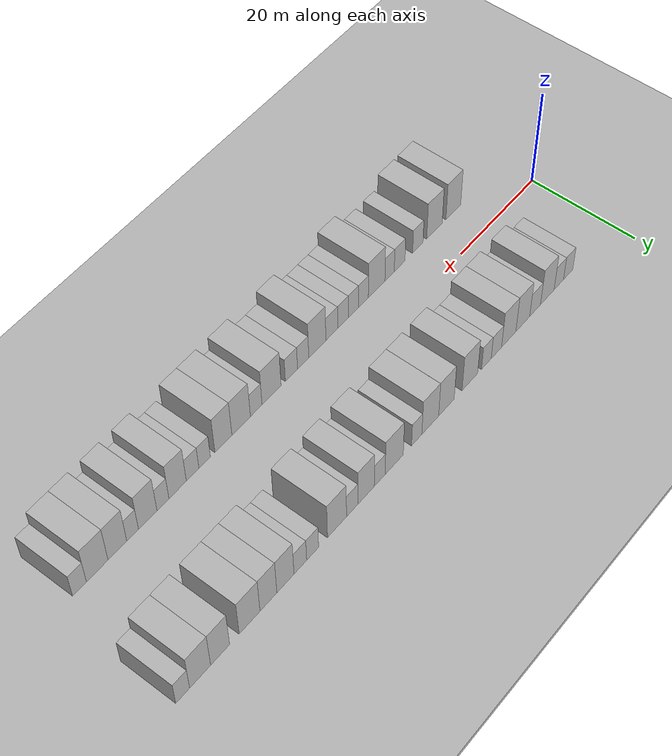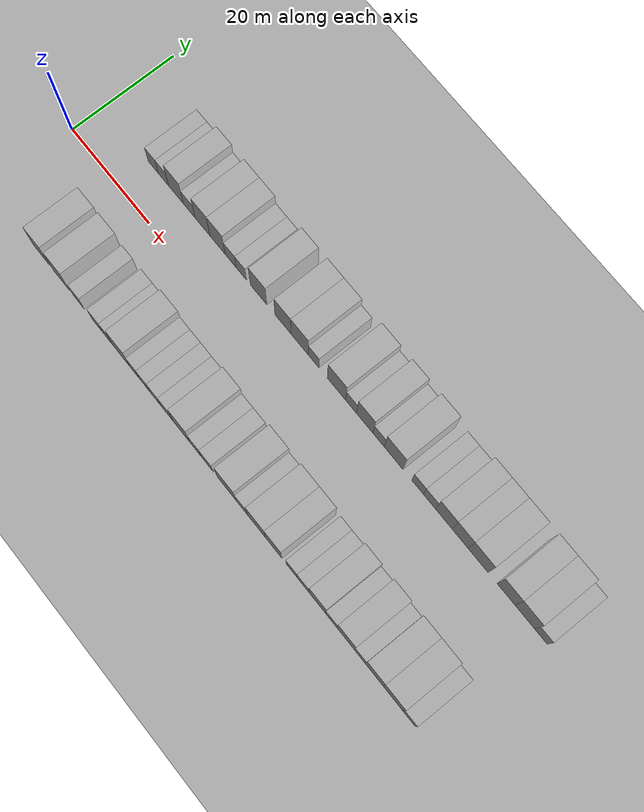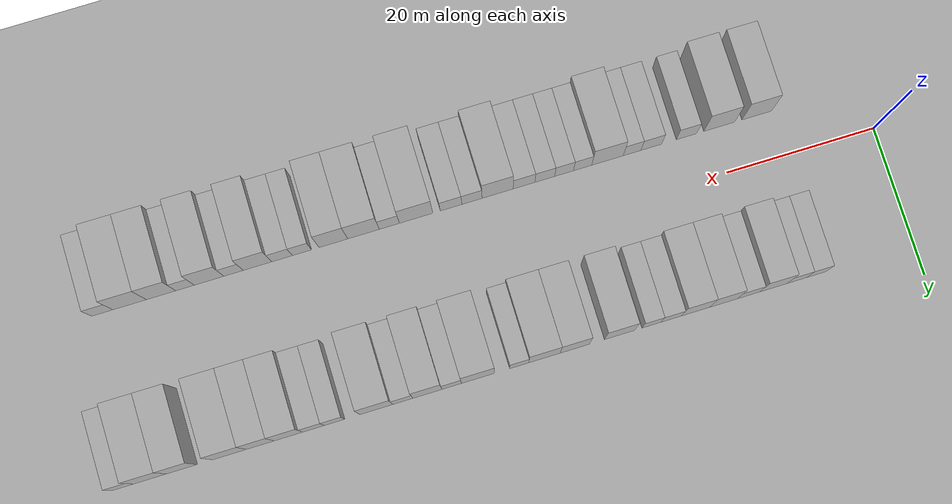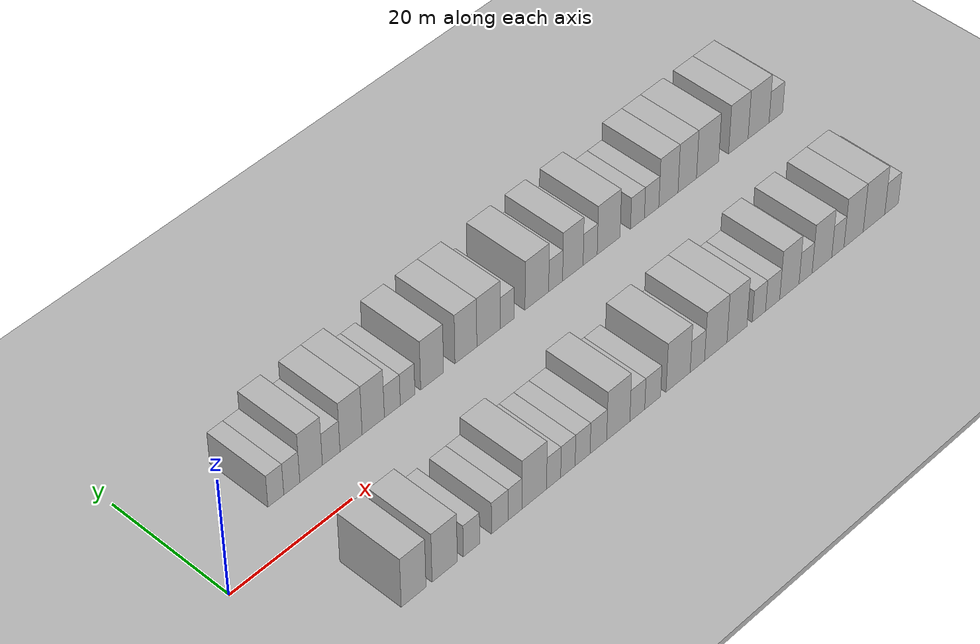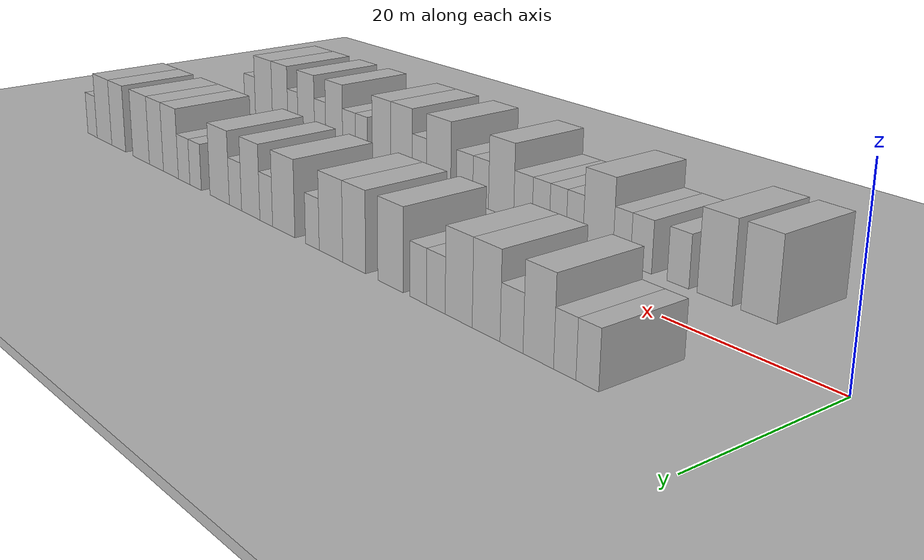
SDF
<sdf version="1.6">
 <world name="default">
  <include><name>ground_plane_1</name><uri>model://HANNAS_ground_plane</uri></include>
  <include>
   <name>ground_plane_2</name>
   <uri>model://HANNAS_ground_plane</uri>
   <pose>100 0 0  0 0 0</pose>
  </include>
  <model name="building_1">
   <static>1</static>
   <pose>13.2982 11.0000 0 0.000000 0.000000 1.570796</pose>
   <link name="link">
    <pose>0 0 3.00 0 0 0</pose>
    <collision name="collision"><geometry><box><size>10.0000 2.5964 6.0000</size></box></geometry></collision>
    <visual name="visual">
     <cast_shadows>0</cast_shadows>
     <geometry><box><size>10.0000 2.5964 6.0000</size></box></geometry>
     <material>
      <script>
       <uri>model://HANNAS_wall/materials/scripts</uri>
       <uri>model://HANNAS_wall/materials/textures</uri>
       <name>vrc/HANNAS_wall</name>
      </script>
     </material>
    </visual>
   </link>
  </model>
  <model name="building_2">
   <static>1</static>
   <pose>15.9129 11.0000 0 0.000000 0.000000 1.570796</pose>
   <link name="link">
    <pose>0 0 3.00 0 0 0</pose>
    <collision name="collision"><geometry><box><size>10.0000 2.6331 6.0000</size></box></geometry></collision>
    <visual name="visual">
     <cast_shadows>0</cast_shadows>
     <geometry><box><size>10.0000 2.6331 6.0000</size></box></geometry>
     <material>
      <script>
       <uri>model://HANNAS_wall/materials/scripts</uri>
       <uri>model://HANNAS_wall/materials/textures</uri>
       <name>vrc/HANNAS_wall</name>
      </script>
     </material>
    </visual>
   </link>
  </model>
  <model name="building_3">
   <static>1</static>
   <pose>19.1036 11.0000 0 0.000000 0.000000 1.570796</pose>
   <link name="link">
    <pose>0 0 4.50 0 0 0</pose>
    <collision name="collision"><geometry><box><size>10.0000 3.7482 9.0000</size></box></geometry></collision>
    <visual name="visual">
     <cast_shadows>0</cast_shadows>
     <geometry><box><size>10.0000 3.7482 9.0000</size></box></geometry>
     <material>
      <script>
       <uri>model://HANNAS_wall/materials/scripts</uri>
       <uri>model://HANNAS_wall/materials/textures</uri>
       <name>vrc/HANNAS_wall</name>
      </script>
     </material>
    </visual>
   </link>
  </model>
  <model name="building_4">
   <static>1</static>
   <pose>22.4496 11.0000 0 0.000000 0.000000 1.570796</pose>
   <link name="link">
    <pose>0 0 3.00 0 0 0</pose>
    <collision name="collision"><geometry><box><size>10.0000 2.9438 6.0000</size></box></geometry></collision>
    <visual name="visual">
     <cast_shadows>0</cast_shadows>
     <geometry><box><size>10.0000 2.9438 6.0000</size></box></geometry>
     <material>
      <script>
       <uri>model://HANNAS_wall/materials/scripts</uri>
       <uri>model://HANNAS_wall/materials/textures</uri>
       <name>vrc/HANNAS_wall</name>
      </script>
     </material>
    </visual>
   </link>
  </model>
  <model name="building_5">
   <static>1</static>
   <pose>25.7871 11.0000 0 0.000000 0.000000 1.570796</pose>
   <link name="link">
    <pose>0 0 4.50 0 0 0</pose>
    <collision name="collision"><geometry><box><size>10.0000 3.7313 9.0000</size></box></geometry></collision>
    <visual name="visual">
     <cast_shadows>0</cast_shadows>
     <geometry><box><size>10.0000 3.7313 9.0000</size></box></geometry>
     <material>
      <script>
       <uri>model://HANNAS_wall/materials/scripts</uri>
       <uri>model://HANNAS_wall/materials/textures</uri>
       <name>vrc/HANNAS_wall</name>
      </script>
     </material>
    </visual>
   </link>
  </model>
  <model name="building_6">
   <static>1</static>
   <pose>29.5493 11.0000 0 0.000000 0.000000 1.570796</pose>
   <link name="link">
    <pose>0 0 4.50 0 0 0</pose>
    <collision name="collision"><geometry><box><size>10.0000 3.7931 9.0000</size></box></geometry></collision>
    <visual name="visual">
     <cast_shadows>0</cast_shadows>
     <geometry><box><size>10.0000 3.7931 9.0000</size></box></geometry>
     <material>
      <script>
       <uri>model://HANNAS_wall/materials/scripts</uri>
       <uri>model://HANNAS_wall/materials/textures</uri>
       <name>vrc/HANNAS_wall</name>
      </script>
     </material>
    </visual>
   </link>
  </model>
  <model name="building_7">
   <static>1</static>
   <pose>32.8133 11.0000 0 0.000000 0.000000 1.570796</pose>
   <link name="link">
    <pose>0 0 3.00 0 0 0</pose>
    <collision name="collision"><geometry><box><size>10.0000 2.7348 6.0000</size></box></geometry></collision>
    <visual name="visual">
     <cast_shadows>0</cast_shadows>
     <geometry><box><size>10.0000 2.7348 6.0000</size></box></geometry>
     <material>
      <script>
       <uri>model://HANNAS_wall/materials/scripts</uri>
       <uri>model://HANNAS_wall/materials/textures</uri>
       <name>vrc/HANNAS_wall</name>
      </script>
     </material>
    </visual>
   </link>
  </model>
  <model name="building_8">
   <static>1</static>
   <pose>35.4457 11.0000 0 0.000000 0.000000 1.570796</pose>
   <link name="link">
    <pose>0 0 3.00 0 0 0</pose>
    <collision name="collision"><geometry><box><size>10.0000 2.5301 6.0000</size></box></geometry></collision>
    <visual name="visual">
     <cast_shadows>0</cast_shadows>
     <geometry><box><size>10.0000 2.5301 6.0000</size></box></geometry>
     <material>
      <script>
       <uri>model://HANNAS_wall/materials/scripts</uri>
       <uri>model://HANNAS_wall/materials/textures</uri>
       <name>vrc/HANNAS_wall</name>
      </script>
     </material>
    </visual>
   </link>
  </model>
  <model name="building_9">
   <static>1</static>
   <pose>39.7168 11.0000 0 0.000000 0.000000 1.570796</pose>
   <link name="link">
    <pose>0 0 4.50 0 0 0</pose>
    <collision name="collision"><geometry><box><size>10.0000 4.0119 9.0000</size></box></geometry></collision>
    <visual name="visual">
     <cast_shadows>0</cast_shadows>
     <geometry><box><size>10.0000 4.0119 9.0000</size></box></geometry>
     <material>
      <script>
       <uri>model://HANNAS_wall/materials/scripts</uri>
       <uri>model://HANNAS_wall/materials/textures</uri>
       <name>vrc/HANNAS_wall</name>
      </script>
     </material>
    </visual>
   </link>
  </model>
  <model name="building_10">
   <static>1</static>
   <pose>45.6708 11.0000 0 0.000000 0.000000 1.570796</pose>
   <link name="link">
    <pose>0 0 4.50 0 0 0</pose>
    <collision name="collision"><geometry><box><size>10.0000 3.8962 9.0000</size></box></geometry></collision>
    <visual name="visual">
     <cast_shadows>0</cast_shadows>
     <geometry><box><size>10.0000 3.8962 9.0000</size></box></geometry>
     <material>
      <script>
       <uri>model://HANNAS_wall/materials/scripts</uri>
       <uri>model://HANNAS_wall/materials/textures</uri>
       <name>vrc/HANNAS_wall</name>
      </script>
     </material>
    </visual>
   </link>
  </model>
  <model name="building_11">
   <static>1</static>
   <pose>49.7050 11.0000 0 0.000000 0.000000 1.570796</pose>
   <link name="link">
    <pose>0 0 4.50 0 0 0</pose>
    <collision name="collision"><geometry><box><size>10.0000 4.1721 9.0000</size></box></geometry></collision>
    <visual name="visual">
     <cast_shadows>0</cast_shadows>
     <geometry><box><size>10.0000 4.1721 9.0000</size></box></geometry>
     <material>
      <script>
       <uri>model://HANNAS_wall/materials/scripts</uri>
       <uri>model://HANNAS_wall/materials/textures</uri>
       <name>vrc/HANNAS_wall</name>
      </script>
     </material>
    </visual>
   </link>
  </model>
  <model name="building_12">
   <static>1</static>
   <pose>53.0540 11.0000 0 0.000000 0.000000 1.570796</pose>
   <link name="link">
    <pose>0 0 3.00 0 0 0</pose>
    <collision name="collision"><geometry><box><size>10.0000 2.5259 6.0000</size></box></geometry></collision>
    <visual name="visual">
     <cast_shadows>0</cast_shadows>
     <geometry><box><size>10.0000 2.5259 6.0000</size></box></geometry>
     <material>
      <script>
       <uri>model://HANNAS_wall/materials/scripts</uri>
       <uri>model://HANNAS_wall/materials/textures</uri>
       <name>vrc/HANNAS_wall</name>
      </script>
     </material>
    </visual>
   </link>
  </model>
  <model name="building_13">
   <static>1</static>
   <pose>58.4918 11.0000 0 0.000000 0.000000 1.570796</pose>
   <link name="link">
    <pose>0 0 4.50 0 0 0</pose>
    <collision name="collision"><geometry><box><size>10.0000 4.3497 9.0000</size></box></geometry></collision>
    <visual name="visual">
     <cast_shadows>0</cast_shadows>
     <geometry><box><size>10.0000 4.3497 9.0000</size></box></geometry>
     <material>
      <script>
       <uri>model://HANNAS_wall/materials/scripts</uri>
       <uri>model://HANNAS_wall/materials/textures</uri>
       <name>vrc/HANNAS_wall</name>
      </script>
     </material>
    </visual>
   </link>
  </model>
  <model name="building_14">
   <static>1</static>
   <pose>61.9541 11.0000 0 0.000000 0.000000 1.570796</pose>
   <link name="link">
    <pose>0 0 3.00 0 0 0</pose>
    <collision name="collision"><geometry><box><size>10.0000 2.5749 6.0000</size></box></geometry></collision>
    <visual name="visual">
     <cast_shadows>0</cast_shadows>
     <geometry><box><size>10.0000 2.5749 6.0000</size></box></geometry>
     <material>
      <script>
       <uri>model://HANNAS_wall/materials/scripts</uri>
       <uri>model://HANNAS_wall/materials/textures</uri>
       <name>vrc/HANNAS_wall</name>
      </script>
     </material>
    </visual>
   </link>
  </model>
  <model name="building_15">
   <static>1</static>
   <pose>65.1549 11.0000 0 0.000000 0.000000 1.570796</pose>
   <link name="link">
    <pose>0 0 4.50 0 0 0</pose>
    <collision name="collision"><geometry><box><size>10.0000 3.8267 9.0000</size></box></geometry></collision>
    <visual name="visual">
     <cast_shadows>0</cast_shadows>
     <geometry><box><size>10.0000 3.8267 9.0000</size></box></geometry>
     <material>
      <script>
       <uri>model://HANNAS_wall/materials/scripts</uri>
       <uri>model://HANNAS_wall/materials/textures</uri>
       <name>vrc/HANNAS_wall</name>
      </script>
     </material>
    </visual>
   </link>
  </model>
  <model name="building_16">
   <static>1</static>
   <pose>68.3939 11.0000 0 0.000000 0.000000 1.570796</pose>
   <link name="link">
    <pose>0 0 3.00 0 0 0</pose>
    <collision name="collision"><geometry><box><size>10.0000 2.6512 6.0000</size></box></geometry></collision>
    <visual name="visual">
     <cast_shadows>0</cast_shadows>
     <geometry><box><size>10.0000 2.6512 6.0000</size></box></geometry>
     <material>
      <script>
       <uri>model://HANNAS_wall/materials/scripts</uri>
       <uri>model://HANNAS_wall/materials/textures</uri>
       <name>vrc/HANNAS_wall</name>
      </script>
     </material>
    </visual>
   </link>
  </model>
  <model name="building_17">
   <static>1</static>
   <pose>71.8897 11.0000 0 0.000000 0.000000 1.570796</pose>
   <link name="link">
    <pose>0 0 4.50 0 0 0</pose>
    <collision name="collision"><geometry><box><size>10.0000 4.3404 9.0000</size></box></geometry></collision>
    <visual name="visual">
     <cast_shadows>0</cast_shadows>
     <geometry><box><size>10.0000 4.3404 9.0000</size></box></geometry>
     <material>
      <script>
       <uri>model://HANNAS_wall/materials/scripts</uri>
       <uri>model://HANNAS_wall/materials/textures</uri>
       <name>vrc/HANNAS_wall</name>
      </script>
     </material>
    </visual>
   </link>
  </model>
  <model name="building_18">
   <static>1</static>
   <pose>77.3994 11.0000 0 0.000000 0.000000 1.570796</pose>
   <link name="link">
    <pose>0 0 3.00 0 0 0</pose>
    <collision name="collision"><geometry><box><size>10.0000 2.6791 6.0000</size></box></geometry></collision>
    <visual name="visual">
     <cast_shadows>0</cast_shadows>
     <geometry><box><size>10.0000 2.6791 6.0000</size></box></geometry>
     <material>
      <script>
       <uri>model://HANNAS_wall/materials/scripts</uri>
       <uri>model://HANNAS_wall/materials/textures</uri>
       <name>vrc/HANNAS_wall</name>
      </script>
     </material>
    </visual>
   </link>
  </model>
  <model name="building_19">
   <static>1</static>
   <pose>80.1359 11.0000 0 0.000000 0.000000 1.570796</pose>
   <link name="link">
    <pose>0 0 3.00 0 0 0</pose>
    <collision name="collision"><geometry><box><size>10.0000 2.7939 6.0000</size></box></geometry></collision>
    <visual name="visual">
     <cast_shadows>0</cast_shadows>
     <geometry><box><size>10.0000 2.7939 6.0000</size></box></geometry>
     <material>
      <script>
       <uri>model://HANNAS_wall/materials/scripts</uri>
       <uri>model://HANNAS_wall/materials/textures</uri>
       <name>vrc/HANNAS_wall</name>
      </script>
     </material>
    </visual>
   </link>
  </model>
  <model name="building_20">
   <static>1</static>
   <pose>83.4077 11.0000 0 0.000000 0.000000 1.570796</pose>
   <link name="link">
    <pose>0 0 4.50 0 0 0</pose>
    <collision name="collision"><geometry><box><size>10.0000 3.7497 9.0000</size></box></geometry></collision>
    <visual name="visual">
     <cast_shadows>0</cast_shadows>
     <geometry><box><size>10.0000 3.7497 9.0000</size></box></geometry>
     <material>
      <script>
       <uri>model://HANNAS_wall/materials/scripts</uri>
       <uri>model://HANNAS_wall/materials/textures</uri>
       <name>vrc/HANNAS_wall</name>
      </script>
     </material>
    </visual>
   </link>
  </model>
  <model name="building_21">
   <static>1</static>
   <pose>87.1007 11.0000 0 0.000000 0.000000 1.570796</pose>
   <link name="link">
    <pose>0 0 4.50 0 0 0</pose>
    <collision name="collision"><geometry><box><size>10.0000 3.6362 9.0000</size></box></geometry></collision>
    <visual name="visual">
     <cast_shadows>0</cast_shadows>
     <geometry><box><size>10.0000 3.6362 9.0000</size></box></geometry>
     <material>
      <script>
       <uri>model://HANNAS_wall/materials/scripts</uri>
       <uri>model://HANNAS_wall/materials/textures</uri>
       <name>vrc/HANNAS_wall</name>
      </script>
     </material>
    </visual>
   </link>
  </model>
  <model name="building_22">
   <static>1</static>
   <pose>91.1329 11.0000 0 0.000000 0.000000 1.570796</pose>
   <link name="link">
    <pose>0 0 4.50 0 0 0</pose>
    <collision name="collision"><geometry><box><size>10.0000 4.4283 9.0000</size></box></geometry></collision>
    <visual name="visual">
     <cast_shadows>0</cast_shadows>
     <geometry><box><size>10.0000 4.4283 9.0000</size></box></geometry>
     <material>
      <script>
       <uri>model://HANNAS_wall/materials/scripts</uri>
       <uri>model://HANNAS_wall/materials/textures</uri>
       <name>vrc/HANNAS_wall</name>
      </script>
     </material>
    </visual>
   </link>
  </model>
  <model name="building_23">
   <static>1</static>
   <pose>97.3107 11.0000 0 0.000000 0.000000 1.570796</pose>
   <link name="link">
    <pose>0 0 4.50 0 0 0</pose>
    <collision name="collision"><geometry><box><size>10.0000 3.9274 9.0000</size></box></geometry></collision>
    <visual name="visual">
     <cast_shadows>0</cast_shadows>
     <geometry><box><size>10.0000 3.9274 9.0000</size></box></geometry>
     <material>
      <script>
       <uri>model://HANNAS_wall/materials/scripts</uri>
       <uri>model://HANNAS_wall/materials/textures</uri>
       <name>vrc/HANNAS_wall</name>
      </script>
     </material>
    </visual>
   </link>
  </model>
  <model name="building_24">
   <static>1</static>
   <pose>101.4170 11.0000 0 0.000000 0.000000 1.570796</pose>
   <link name="link">
    <pose>0 0 4.50 0 0 0</pose>
    <collision name="collision"><geometry><box><size>10.0000 4.2852 9.0000</size></box></geometry></collision>
    <visual name="visual">
     <cast_shadows>0</cast_shadows>
     <geometry><box><size>10.0000 4.2852 9.0000</size></box></geometry>
     <material>
      <script>
       <uri>model://HANNAS_wall/materials/scripts</uri>
       <uri>model://HANNAS_wall/materials/textures</uri>
       <name>vrc/HANNAS_wall</name>
      </script>
     </material>
    </visual>
   </link>
  </model>
  <model name="building_25">
   <static>1</static>
   <pose>104.9561 11.0000 0 0.000000 0.000000 1.570796</pose>
   <link name="link">
    <pose>0 0 3.00 0 0 0</pose>
    <collision name="collision"><geometry><box><size>10.0000 2.7929 6.0000</size></box></geometry></collision>
    <visual name="visual">
     <cast_shadows>0</cast_shadows>
     <geometry><box><size>10.0000 2.7929 6.0000</size></box></geometry>
     <material>
      <script>
       <uri>model://HANNAS_wall/materials/scripts</uri>
       <uri>model://HANNAS_wall/materials/textures</uri>
       <name>vrc/HANNAS_wall</name>
      </script>
     </material>
    </visual>
   </link>
  </model>
  <model name="building_50">
   <static>1</static>
   <pose>14.0295 -11.0000 0 0.000000 0.000000 1.570796</pose>
   <link name="link">
    <pose>0 0 4.50 0 0 0</pose>
    <collision name="collision"><geometry><box><size>10.0000 4.0590 9.0000</size></box></geometry></collision>
    <visual name="visual">
     <cast_shadows>0</cast_shadows>
     <geometry><box><size>10.0000 4.0590 9.0000</size></box></geometry>
     <material>
      <script>
       <uri>model://HANNAS_wall/materials/scripts</uri>
       <uri>model://HANNAS_wall/materials/textures</uri>
       <name>vrc/HANNAS_wall</name>
      </script>
     </material>
    </visual>
   </link>
  </model>
  <model name="building_51">
   <static>1</static>
   <pose>19.1534 -11.0000 0 0.000000 0.000000 1.570796</pose>
   <link name="link">
    <pose>0 0 4.50 0 0 0</pose>
    <collision name="collision"><geometry><box><size>10.0000 4.1889 9.0000</size></box></geometry></collision>
    <visual name="visual">
     <cast_shadows>0</cast_shadows>
     <geometry><box><size>10.0000 4.1889 9.0000</size></box></geometry>
     <material>
      <script>
       <uri>model://HANNAS_wall/materials/scripts</uri>
       <uri>model://HANNAS_wall/materials/textures</uri>
       <name>vrc/HANNAS_wall</name>
      </script>
     </material>
    </visual>
   </link>
  </model>
  <model name="building_52">
   <static>1</static>
   <pose>23.6245 -11.0000 0 0.000000 0.000000 1.570796</pose>
   <link name="link">
    <pose>0 0 3.00 0 0 0</pose>
    <collision name="collision"><geometry><box><size>10.0000 2.7533 6.0000</size></box></geometry></collision>
    <visual name="visual">
     <cast_shadows>0</cast_shadows>
     <geometry><box><size>10.0000 2.7533 6.0000</size></box></geometry>
     <material>
      <script>
       <uri>model://HANNAS_wall/materials/scripts</uri>
       <uri>model://HANNAS_wall/materials/textures</uri>
       <name>vrc/HANNAS_wall</name>
      </script>
     </material>
    </visual>
   </link>
  </model>
  <model name="building_53">
   <static>1</static>
   <pose>28.4085 -11.0000 0 0.000000 0.000000 1.570796</pose>
   <link name="link">
    <pose>0 0 3.00 0 0 0</pose>
    <collision name="collision"><geometry><box><size>10.0000 2.8147 6.0000</size></box></geometry></collision>
    <visual name="visual">
     <cast_shadows>0</cast_shadows>
     <geometry><box><size>10.0000 2.8147 6.0000</size></box></geometry>
     <material>
      <script>
       <uri>model://HANNAS_wall/materials/scripts</uri>
       <uri>model://HANNAS_wall/materials/textures</uri>
       <name>vrc/HANNAS_wall</name>
      </script>
     </material>
    </visual>
   </link>
  </model>
  <model name="building_54">
   <static>1</static>
   <pose>31.0183 -11.0000 0 0.000000 0.000000 1.570796</pose>
   <link name="link">
    <pose>0 0 3.00 0 0 0</pose>
    <collision name="collision"><geometry><box><size>10.0000 2.4049 6.0000</size></box></geometry></collision>
    <visual name="visual">
     <cast_shadows>0</cast_shadows>
     <geometry><box><size>10.0000 2.4049 6.0000</size></box></geometry>
     <material>
      <script>
       <uri>model://HANNAS_wall/materials/scripts</uri>
       <uri>model://HANNAS_wall/materials/textures</uri>
       <name>vrc/HANNAS_wall</name>
      </script>
     </material>
    </visual>
   </link>
  </model>
  <model name="building_55">
   <static>1</static>
   <pose>34.3515 -11.0000 0 0.000000 0.000000 1.570796</pose>
   <link name="link">
    <pose>0 0 4.50 0 0 0</pose>
    <collision name="collision"><geometry><box><size>10.0000 4.2616 9.0000</size></box></geometry></collision>
    <visual name="visual">
     <cast_shadows>0</cast_shadows>
     <geometry><box><size>10.0000 4.2616 9.0000</size></box></geometry>
     <material>
      <script>
       <uri>model://HANNAS_wall/materials/scripts</uri>
       <uri>model://HANNAS_wall/materials/textures</uri>
       <name>vrc/HANNAS_wall</name>
      </script>
     </material>
    </visual>
   </link>
  </model>
  <model name="building_56">
   <static>1</static>
   <pose>37.7101 -11.0000 0 0.000000 0.000000 1.570796</pose>
   <link name="link">
    <pose>0 0 3.00 0 0 0</pose>
    <collision name="collision"><geometry><box><size>10.0000 2.4555 6.0000</size></box></geometry></collision>
    <visual name="visual">
     <cast_shadows>0</cast_shadows>
     <geometry><box><size>10.0000 2.4555 6.0000</size></box></geometry>
     <material>
      <script>
       <uri>model://HANNAS_wall/materials/scripts</uri>
       <uri>model://HANNAS_wall/materials/textures</uri>
       <name>vrc/HANNAS_wall</name>
      </script>
     </material>
    </visual>
   </link>
  </model>
  <model name="building_57">
   <static>1</static>
   <pose>40.2073 -11.0000 0 0.000000 0.000000 1.570796</pose>
   <link name="link">
    <pose>0 0 3.00 0 0 0</pose>
    <collision name="collision"><geometry><box><size>10.0000 2.5390 6.0000</size></box></geometry></collision>
    <visual name="visual">
     <cast_shadows>0</cast_shadows>
     <geometry><box><size>10.0000 2.5390 6.0000</size></box></geometry>
     <material>
      <script>
       <uri>model://HANNAS_wall/materials/scripts</uri>
       <uri>model://HANNAS_wall/materials/textures</uri>
       <name>vrc/HANNAS_wall</name>
      </script>
     </material>
    </visual>
   </link>
  </model>
  <model name="building_58">
   <static>1</static>
   <pose>42.8055 -11.0000 0 0.000000 0.000000 1.570796</pose>
   <link name="link">
    <pose>0 0 3.00 0 0 0</pose>
    <collision name="collision"><geometry><box><size>10.0000 2.6573 6.0000</size></box></geometry></collision>
    <visual name="visual">
     <cast_shadows>0</cast_shadows>
     <geometry><box><size>10.0000 2.6573 6.0000</size></box></geometry>
     <material>
      <script>
       <uri>model://HANNAS_wall/materials/scripts</uri>
       <uri>model://HANNAS_wall/materials/textures</uri>
       <name>vrc/HANNAS_wall</name>
      </script>
     </material>
    </visual>
   </link>
  </model>
  <model name="building_59">
   <static>1</static>
   <pose>45.6085 -11.0000 0 0.000000 0.000000 1.570796</pose>
   <link name="link">
    <pose>0 0 3.00 0 0 0</pose>
    <collision name="collision"><geometry><box><size>10.0000 2.9489 6.0000</size></box></geometry></collision>
    <visual name="visual">
     <cast_shadows>0</cast_shadows>
     <geometry><box><size>10.0000 2.9489 6.0000</size></box></geometry>
     <material>
      <script>
       <uri>model://HANNAS_wall/materials/scripts</uri>
       <uri>model://HANNAS_wall/materials/textures</uri>
       <name>vrc/HANNAS_wall</name>
      </script>
     </material>
    </visual>
   </link>
  </model>
  <model name="building_60">
   <static>1</static>
   <pose>49.1689 -11.0000 0 0.000000 0.000000 1.570796</pose>
   <link name="link">
    <pose>0 0 4.50 0 0 0</pose>
    <collision name="collision"><geometry><box><size>10.0000 4.1718 9.0000</size></box></geometry></collision>
    <visual name="visual">
     <cast_shadows>0</cast_shadows>
     <geometry><box><size>10.0000 4.1718 9.0000</size></box></geometry>
     <material>
      <script>
       <uri>model://HANNAS_wall/materials/scripts</uri>
       <uri>model://HANNAS_wall/materials/textures</uri>
       <name>vrc/HANNAS_wall</name>
      </script>
     </material>
    </visual>
   </link>
  </model>
  <model name="building_61">
   <static>1</static>
   <pose>52.6075 -11.0000 0 0.000000 0.000000 1.570796</pose>
   <link name="link">
    <pose>0 0 3.00 0 0 0</pose>
    <collision name="collision"><geometry><box><size>10.0000 2.7056 6.0000</size></box></geometry></collision>
    <visual name="visual">
     <cast_shadows>0</cast_shadows>
     <geometry><box><size>10.0000 2.7056 6.0000</size></box></geometry>
     <material>
      <script>
       <uri>model://HANNAS_wall/materials/scripts</uri>
       <uri>model://HANNAS_wall/materials/textures</uri>
       <name>vrc/HANNAS_wall</name>
      </script>
     </material>
    </visual>
   </link>
  </model>
  <model name="building_62">
   <static>1</static>
   <pose>55.4121 -11.0000 0 0.000000 0.000000 1.570796</pose>
   <link name="link">
    <pose>0 0 3.00 0 0 0</pose>
    <collision name="collision"><geometry><box><size>10.0000 2.9036 6.0000</size></box></geometry></collision>
    <visual name="visual">
     <cast_shadows>0</cast_shadows>
     <geometry><box><size>10.0000 2.9036 6.0000</size></box></geometry>
     <material>
      <script>
       <uri>model://HANNAS_wall/materials/scripts</uri>
       <uri>model://HANNAS_wall/materials/textures</uri>
       <name>vrc/HANNAS_wall</name>
      </script>
     </material>
    </visual>
   </link>
  </model>
  <model name="building_63">
   <static>1</static>
   <pose>60.0976 -11.0000 0 0.000000 0.000000 1.570796</pose>
   <link name="link">
    <pose>0 0 4.50 0 0 0</pose>
    <collision name="collision"><geometry><box><size>10.0000 4.4673 9.0000</size></box></geometry></collision>
    <visual name="visual">
     <cast_shadows>0</cast_shadows>
     <geometry><box><size>10.0000 4.4673 9.0000</size></box></geometry>
     <material>
      <script>
       <uri>model://HANNAS_wall/materials/scripts</uri>
       <uri>model://HANNAS_wall/materials/textures</uri>
       <name>vrc/HANNAS_wall</name>
      </script>
     </material>
    </visual>
   </link>
  </model>
  <model name="building_64">
   <static>1</static>
   <pose>63.6772 -11.0000 0 0.000000 0.000000 1.570796</pose>
   <link name="link">
    <pose>0 0 3.00 0 0 0</pose>
    <collision name="collision"><geometry><box><size>10.0000 2.6919 6.0000</size></box></geometry></collision>
    <visual name="visual">
     <cast_shadows>0</cast_shadows>
     <geometry><box><size>10.0000 2.6919 6.0000</size></box></geometry>
     <material>
      <script>
       <uri>model://HANNAS_wall/materials/scripts</uri>
       <uri>model://HANNAS_wall/materials/textures</uri>
       <name>vrc/HANNAS_wall</name>
      </script>
     </material>
    </visual>
   </link>
  </model>
  <model name="building_65">
   <static>1</static>
   <pose>67.1402 -11.0000 0 0.000000 0.000000 1.570796</pose>
   <link name="link">
    <pose>0 0 4.50 0 0 0</pose>
    <collision name="collision"><geometry><box><size>10.0000 4.2341 9.0000</size></box></geometry></collision>
    <visual name="visual">
     <cast_shadows>0</cast_shadows>
     <geometry><box><size>10.0000 4.2341 9.0000</size></box></geometry>
     <material>
      <script>
       <uri>model://HANNAS_wall/materials/scripts</uri>
       <uri>model://HANNAS_wall/materials/textures</uri>
       <name>vrc/HANNAS_wall</name>
      </script>
     </material>
    </visual>
   </link>
  </model>
  <model name="building_66">
   <static>1</static>
   <pose>71.1725 -11.0000 0 0.000000 0.000000 1.570796</pose>
   <link name="link">
    <pose>0 0 4.50 0 0 0</pose>
    <collision name="collision"><geometry><box><size>10.0000 3.8305 9.0000</size></box></geometry></collision>
    <visual name="visual">
     <cast_shadows>0</cast_shadows>
     <geometry><box><size>10.0000 3.8305 9.0000</size></box></geometry>
     <material>
      <script>
       <uri>model://HANNAS_wall/materials/scripts</uri>
       <uri>model://HANNAS_wall/materials/textures</uri>
       <name>vrc/HANNAS_wall</name>
      </script>
     </material>
    </visual>
   </link>
  </model>
  <model name="building_67">
   <static>1</static>
   <pose>75.3624 -11.0000 0 0.000000 0.000000 1.570796</pose>
   <link name="link">
    <pose>0 0 3.00 0 0 0</pose>
    <collision name="collision"><geometry><box><size>10.0000 2.5492 6.0000</size></box></geometry></collision>
    <visual name="visual">
     <cast_shadows>0</cast_shadows>
     <geometry><box><size>10.0000 2.5492 6.0000</size></box></geometry>
     <material>
      <script>
       <uri>model://HANNAS_wall/materials/scripts</uri>
       <uri>model://HANNAS_wall/materials/textures</uri>
       <name>vrc/HANNAS_wall</name>
      </script>
     </material>
    </visual>
   </link>
  </model>
  <model name="building_68">
   <static>1</static>
   <pose>78.0154 -11.0000 0 0.000000 0.000000 1.570796</pose>
   <link name="link">
    <pose>0 0 3.00 0 0 0</pose>
    <collision name="collision"><geometry><box><size>10.0000 2.7570 6.0000</size></box></geometry></collision>
    <visual name="visual">
     <cast_shadows>0</cast_shadows>
     <geometry><box><size>10.0000 2.7570 6.0000</size></box></geometry>
     <material>
      <script>
       <uri>model://HANNAS_wall/materials/scripts</uri>
       <uri>model://HANNAS_wall/materials/textures</uri>
       <name>vrc/HANNAS_wall</name>
      </script>
     </material>
    </visual>
   </link>
  </model>
  <model name="building_69">
   <static>1</static>
   <pose>81.2817 -11.0000 0 0.000000 0.000000 1.570796</pose>
   <link name="link">
    <pose>0 0 4.50 0 0 0</pose>
    <collision name="collision"><geometry><box><size>10.0000 3.7755 9.0000</size></box></geometry></collision>
    <visual name="visual">
     <cast_shadows>0</cast_shadows>
     <geometry><box><size>10.0000 3.7755 9.0000</size></box></geometry>
     <material>
      <script>
       <uri>model://HANNAS_wall/materials/scripts</uri>
       <uri>model://HANNAS_wall/materials/textures</uri>
       <name>vrc/HANNAS_wall</name>
      </script>
     </material>
    </visual>
   </link>
  </model>
  <model name="building_70">
   <static>1</static>
   <pose>84.4568 -11.0000 0 0.000000 0.000000 1.570796</pose>
   <link name="link">
    <pose>0 0 3.00 0 0 0</pose>
    <collision name="collision"><geometry><box><size>10.0000 2.5747 6.0000</size></box></geometry></collision>
    <visual name="visual">
     <cast_shadows>0</cast_shadows>
     <geometry><box><size>10.0000 2.5747 6.0000</size></box></geometry>
     <material>
      <script>
       <uri>model://HANNAS_wall/materials/scripts</uri>
       <uri>model://HANNAS_wall/materials/textures</uri>
       <name>vrc/HANNAS_wall</name>
      </script>
     </material>
    </visual>
   </link>
  </model>
  <model name="building_71">
   <static>1</static>
   <pose>87.6993 -11.0000 0 0.000000 0.000000 1.570796</pose>
   <link name="link">
    <pose>0 0 4.50 0 0 0</pose>
    <collision name="collision"><geometry><box><size>10.0000 3.9104 9.0000</size></box></geometry></collision>
    <visual name="visual">
     <cast_shadows>0</cast_shadows>
     <geometry><box><size>10.0000 3.9104 9.0000</size></box></geometry>
     <material>
      <script>
       <uri>model://HANNAS_wall/materials/scripts</uri>
       <uri>model://HANNAS_wall/materials/textures</uri>
       <name>vrc/HANNAS_wall</name>
      </script>
     </material>
    </visual>
   </link>
  </model>
  <model name="building_72">
   <static>1</static>
   <pose>90.8811 -11.0000 0 0.000000 0.000000 1.570796</pose>
   <link name="link">
    <pose>0 0 3.00 0 0 0</pose>
    <collision name="collision"><geometry><box><size>10.0000 2.4532 6.0000</size></box></geometry></collision>
    <visual name="visual">
     <cast_shadows>0</cast_shadows>
     <geometry><box><size>10.0000 2.4532 6.0000</size></box></geometry>
     <material>
      <script>
       <uri>model://HANNAS_wall/materials/scripts</uri>
       <uri>model://HANNAS_wall/materials/textures</uri>
       <name>vrc/HANNAS_wall</name>
      </script>
     </material>
    </visual>
   </link>
  </model>
  <model name="building_73">
   <static>1</static>
   <pose>94.0493 -11.0000 0 0.000000 0.000000 1.570796</pose>
   <link name="link">
    <pose>0 0 4.50 0 0 0</pose>
    <collision name="collision"><geometry><box><size>10.0000 3.8832 9.0000</size></box></geometry></collision>
    <visual name="visual">
     <cast_shadows>0</cast_shadows>
     <geometry><box><size>10.0000 3.8832 9.0000</size></box></geometry>
     <material>
      <script>
       <uri>model://HANNAS_wall/materials/scripts</uri>
       <uri>model://HANNAS_wall/materials/textures</uri>
       <name>vrc/HANNAS_wall</name>
      </script>
     </material>
    </visual>
   </link>
  </model>
  <model name="building_74">
   <static>1</static>
   <pose>98.1915 -11.0000 0 0.000000 0.000000 1.570796</pose>
   <link name="link">
    <pose>0 0 4.50 0 0 0</pose>
    <collision name="collision"><geometry><box><size>10.0000 4.4013 9.0000</size></box></geometry></collision>
    <visual name="visual">
     <cast_shadows>0</cast_shadows>
     <geometry><box><size>10.0000 4.4013 9.0000</size></box></geometry>
     <material>
      <script>
       <uri>model://HANNAS_wall/materials/scripts</uri>
       <uri>model://HANNAS_wall/materials/textures</uri>
       <name>vrc/HANNAS_wall</name>
      </script>
     </material>
    </visual>
   </link>
  </model>
  <model name="building_75">
   <static>1</static>
   <pose>101.7963 -11.0000 0 0.000000 0.000000 1.570796</pose>
   <link name="link">
    <pose>0 0 3.00 0 0 0</pose>
    <collision name="collision"><geometry><box><size>10.0000 2.8082 6.0000</size></box></geometry></collision>
    <visual name="visual">
     <cast_shadows>0</cast_shadows>
     <geometry><box><size>10.0000 2.8082 6.0000</size></box></geometry>
     <material>
      <script>
       <uri>model://HANNAS_wall/materials/scripts</uri>
       <uri>model://HANNAS_wall/materials/textures</uri>
       <name>vrc/HANNAS_wall</name>
      </script>
     </material>
    </visual>
   </link>
  </model>
 </world>
</sdf>
